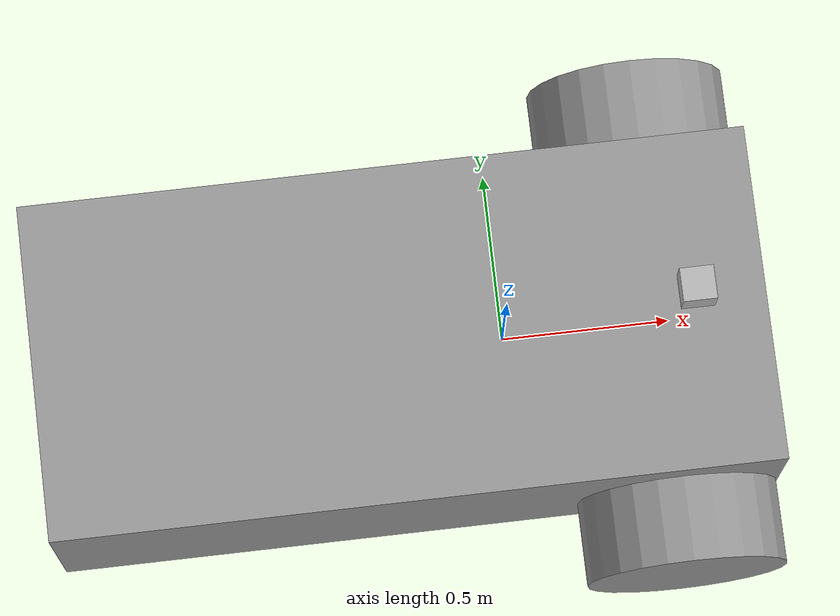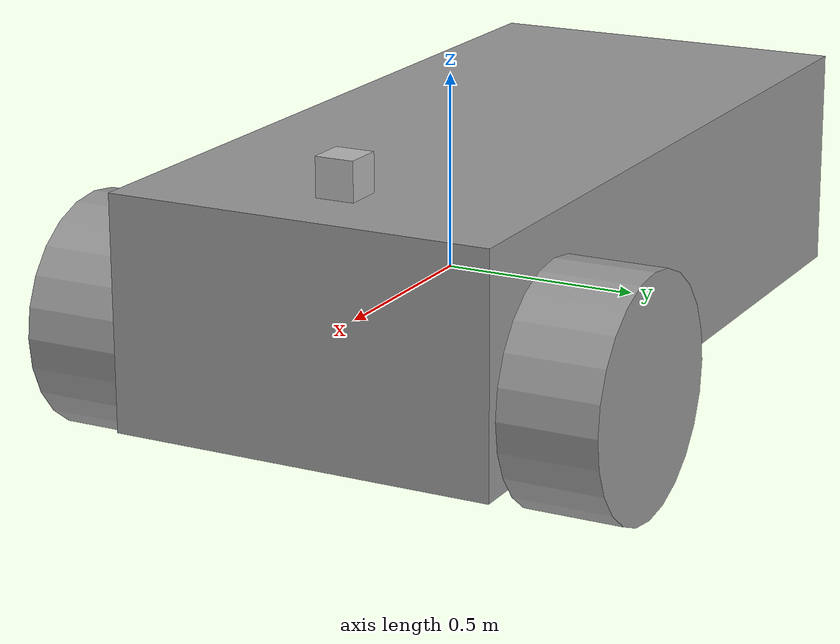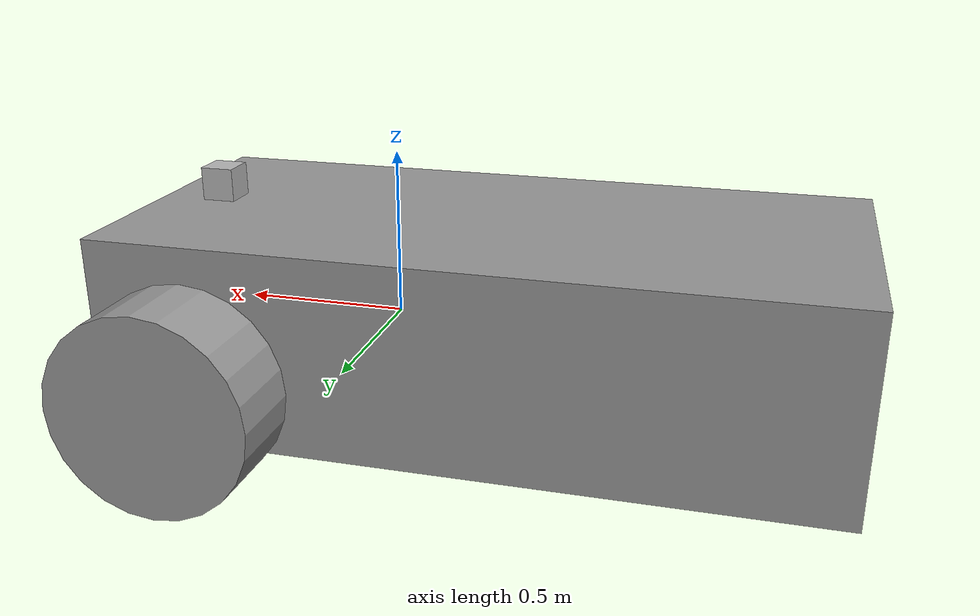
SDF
<?xml version='1.0'?>
<sdf version='1.7'>
  <model name='test_vehicle'>
    <link name='link_0'>
      <inertial>
        <mass>1.18175</mass>
        <inertia>
          <ixx>0.128159</ixx>
          <ixy>0</ixy>
          <ixz>0</ixz>
          <iyy>0.486034</iyy>
          <iyz>0</iyz>
          <izz>0.554832</izz>
        </inertia>
        <pose>0 0 0 0 -0 0</pose>
      </inertial>
      <pose>-0.309686 -0.007462 0.018043 0 -0 0</pose>
      <gravity>1</gravity>
      <self_collide>0</self_collide>
      <kinematic>0</kinematic>
      <enable_wind>0</enable_wind>
      <visual name='visual'>
        <pose>0 0 0 0 -0 0</pose>
        <geometry>
          <box>
            <size>2.15268 1 0.6</size>
          </box>
        </geometry>
        <material>
          <lighting>1</lighting>
          <script>
            <uri>file://media/materials/scripts/gazebo.material</uri>
            <name>Gazebo/Grey</name>
          </script>
          <shader type='pixel'>
            <normal_map>__default__</normal_map>
          </shader>
          <ambient>0.3 0.3 0.3 1</ambient>
          <diffuse>0.7 0.7 0.7 1</diffuse>
          <specular>0.01 0.01 0.01 1</specular>
          <emissive>0 0 0 1</emissive>
        </material>
        <transparency>0</transparency>
        <cast_shadows>1</cast_shadows>
      </visual>
      <collision name='collision'>
        <laser_retro>0</laser_retro>
        <max_contacts>10</max_contacts>
        <pose>0 0 0 0 -0 0</pose>
        <geometry>
          <box>
            <size>2.15268 1 0.6</size>
          </box>
        </geometry>
        <surface>
          <friction>
            <ode>
              <mu>1</mu>
              <mu2>1</mu2>
              <fdir1>0 0 0</fdir1>
              <slip1>0</slip1>
              <slip2>0</slip2>
            </ode>
            <torsional>
              <coefficient>1</coefficient>
              <patch_radius>0</patch_radius>
              <surface_radius>0</surface_radius>
              <use_patch_radius>1</use_patch_radius>
              <ode>
                <slip>0</slip>
              </ode>
            </torsional>
          </friction>
          <bounce>
            <restitution_coefficient>0</restitution_coefficient>
            <threshold>1e+06</threshold>
          </bounce>
          <contact>
            <collide_without_contact>0</collide_without_contact>
            <collide_without_contact_bitmask>1</collide_without_contact_bitmask>
            <collide_bitmask>1</collide_bitmask>
            <ode>
              <soft_cfm>0</soft_cfm>
              <soft_erp>0.2</soft_erp>
              <kp>1e+13</kp>
              <kd>1</kd>
              <max_vel>0.01</max_vel>
              <min_depth>0</min_depth>
            </ode>
            <bullet>
              <split_impulse>1</split_impulse>
              <split_impulse_penetration_threshold>-0.01</split_impulse_penetration_threshold>
              <soft_cfm>0</soft_cfm>
              <soft_erp>0.2</soft_erp>
              <kp>1e+13</kp>
              <kd>1</kd>
            </bullet>
          </contact>
        </surface>
      </collision>
    </link>
    <link name='link_1'>
      <inertial>
        <mass>1</mass>
        <inertia>
          <ixx>0.145833</ixx>
          <ixy>0</ixy>
          <ixz>0</ixz>
          <iyy>0.145833</iyy>
          <iyz>0</iyz>
          <izz>0.125</izz>
        </inertia>
        <pose>0 0 0 0 -0 0</pose>
      </inertial>
      <pose>0.466652 0.632567 -0.081957 1.5707 -0 0</pose>
      <gravity>1</gravity>
      <self_collide>0</self_collide>
      <kinematic>0</kinematic>
      <enable_wind>0</enable_wind>
      <visual name='visual'>
        <pose>0 0 0 0 -0 0</pose>
        <geometry>
          <cylinder>
            <radius>0.3</radius>
            <length>0.25</length>
          </cylinder>
        </geometry>
        <material>
          <lighting>1</lighting>
          <script>
            <uri>file://media/materials/scripts/gazebo.material</uri>
            <name>Gazebo/Grey</name>
          </script>
          <shader type='pixel'>
            <normal_map>__default__</normal_map>
          </shader>
          <ambient>0.3 0.3 0.3 1</ambient>
          <diffuse>0.7 0.7 0.7 1</diffuse>
          <specular>0.01 0.01 0.01 1</specular>
          <emissive>0 0 0 1</emissive>
        </material>
        <transparency>0</transparency>
        <cast_shadows>1</cast_shadows>
      </visual>
      <collision name='collision'>
        <laser_retro>0</laser_retro>
        <max_contacts>10</max_contacts>
        <pose>0 0 0 0 -0 0</pose>
        <geometry>
          <cylinder>
            <radius>0.3</radius>
            <length>0.25</length>
          </cylinder>
        </geometry>
        <surface>
          <friction>
            <ode>
              <mu>1</mu>
              <mu2>1</mu2>
              <fdir1>0 0 0</fdir1>
              <slip1>0</slip1>
              <slip2>0</slip2>
            </ode>
            <torsional>
              <coefficient>1</coefficient>
              <patch_radius>0</patch_radius>
              <surface_radius>0</surface_radius>
              <use_patch_radius>1</use_patch_radius>
              <ode>
                <slip>0</slip>
              </ode>
            </torsional>
          </friction>
          <bounce>
            <restitution_coefficient>0</restitution_coefficient>
            <threshold>1e+06</threshold>
          </bounce>
          <contact>
            <collide_without_contact>0</collide_without_contact>
            <collide_without_contact_bitmask>1</collide_without_contact_bitmask>
            <collide_bitmask>1</collide_bitmask>
            <ode>
              <soft_cfm>0</soft_cfm>
              <soft_erp>0.2</soft_erp>
              <kp>1e+13</kp>
              <kd>1</kd>
              <max_vel>0.01</max_vel>
              <min_depth>0</min_depth>
            </ode>
            <bullet>
              <split_impulse>1</split_impulse>
              <split_impulse_penetration_threshold>-0.01</split_impulse_penetration_threshold>
              <soft_cfm>0</soft_cfm>
              <soft_erp>0.2</soft_erp>
              <kp>1e+13</kp>
              <kd>1</kd>
            </bullet>
          </contact>
        </surface>
      </collision>
    </link>
    <link name='link_1_clone'>
      <inertial>
        <mass>1</mass>
        <inertia>
          <ixx>0.145833</ixx>
          <ixy>0</ixy>
          <ixz>0</ixz>
          <iyy>0.145833</iyy>
          <iyz>0</iyz>
          <izz>0.125</izz>
        </inertia>
        <pose>0 0 0 0 -0 0</pose>
      </inertial>
      <pose>0.466653 -0.632492 -0.081957 1.5707 -0 0</pose>
      <gravity>1</gravity>
      <self_collide>0</self_collide>
      <kinematic>0</kinematic>
      <enable_wind>0</enable_wind>
      <visual name='visual'>
        <pose>0 0 0 0 -0 0</pose>
        <geometry>
          <cylinder>
            <radius>0.3</radius>
            <length>0.25</length>
          </cylinder>
        </geometry>
        <material>
          <lighting>1</lighting>
          <script>
            <uri>file://media/materials/scripts/gazebo.material</uri>
            <name>Gazebo/Grey</name>
          </script>
          <shader type='pixel'>
            <normal_map>__default__</normal_map>
          </shader>
          <ambient>0.3 0.3 0.3 1</ambient>
          <diffuse>0.7 0.7 0.7 1</diffuse>
          <specular>0.01 0.01 0.01 1</specular>
          <emissive>0 0 0 1</emissive>
        </material>
        <transparency>0</transparency>
        <cast_shadows>1</cast_shadows>
      </visual>
      <collision name='collision'>
        <laser_retro>0</laser_retro>
        <max_contacts>10</max_contacts>
        <pose>0 0 0 0 -0 0</pose>
        <geometry>
          <cylinder>
            <radius>0.3</radius>
            <length>0.25</length>
          </cylinder>
        </geometry>
        <surface>
          <friction>
            <ode>
              <mu>1</mu>
              <mu2>1</mu2>
              <fdir1>0 0 0</fdir1>
              <slip1>0</slip1>
              <slip2>0</slip2>
            </ode>
            <torsional>
              <coefficient>1</coefficient>
              <patch_radius>0</patch_radius>
              <surface_radius>0</surface_radius>
              <use_patch_radius>1</use_patch_radius>
              <ode>
                <slip>0</slip>
              </ode>
            </torsional>
          </friction>
          <bounce>
            <restitution_coefficient>0</restitution_coefficient>
            <threshold>1e+06</threshold>
          </bounce>
          <contact>
            <collide_without_contact>0</collide_without_contact>
            <collide_without_contact_bitmask>1</collide_without_contact_bitmask>
            <collide_bitmask>1</collide_bitmask>
            <ode>
              <soft_cfm>0</soft_cfm>
              <soft_erp>0.2</soft_erp>
              <kp>1e+13</kp>
              <kd>1</kd>
              <max_vel>0.01</max_vel>
              <min_depth>0</min_depth>
            </ode>
            <bullet>
              <split_impulse>1</split_impulse>
              <split_impulse_penetration_threshold>-0.01</split_impulse_penetration_threshold>
              <soft_cfm>0</soft_cfm>
              <soft_erp>0.2</soft_erp>
              <kp>1e+13</kp>
              <kd>1</kd>
            </bullet>
          </contact>
        </surface>
      </collision>
    </link>
    <link name='link_2'>
      <inertial>
        <mass>1</mass>
        <inertia>
          <ixx>0.1</ixx>
          <ixy>0</ixy>
          <ixz>0</ixz>
          <iyy>0.1</iyy>
          <iyz>0</iyz>
          <izz>0.1</izz>
        </inertia>
        <pose>0 0 0 0 -0 0</pose>
      </inertial>
      <pose>-1.18603 -0.007462 -0.181957 0 -0 0</pose>
      <gravity>1</gravity>
      <self_collide>0</self_collide>
      <kinematic>0</kinematic>
      <enable_wind>0</enable_wind>
      <visual name='visual'>
        <pose>0 0 0 0 -0 0</pose>
        <geometry>
          <sphere>
            <radius>0.2</radius>
          </sphere>
        </geometry>
        <material>
          <lighting>1</lighting>
          <script>
            <uri>file://media/materials/scripts/gazebo.material</uri>
            <name>Gazebo/Grey</name>
          </script>
          <shader type='pixel'>
            <normal_map>__default__</normal_map>
          </shader>
          <ambient>0.3 0.3 0.3 1</ambient>
          <diffuse>0.7 0.7 0.7 1</diffuse>
          <specular>0.01 0.01 0.01 1</specular>
          <emissive>0 0 0 1</emissive>
        </material>
        <transparency>0</transparency>
        <cast_shadows>1</cast_shadows>
      </visual>
      <collision name='collision'>
        <laser_retro>0</laser_retro>
        <max_contacts>10</max_contacts>
        <pose>0 0 0 0 -0 0</pose>
        <geometry>
          <sphere>
            <radius>0.2</radius>
          </sphere>
        </geometry>
        <surface>
          <friction>
            <ode>
              <mu>1</mu>
              <mu2>1</mu2>
              <fdir1>0 0 0</fdir1>
              <slip1>0</slip1>
              <slip2>0</slip2>
            </ode>
            <torsional>
              <coefficient>1</coefficient>
              <patch_radius>0</patch_radius>
              <surface_radius>0</surface_radius>
              <use_patch_radius>1</use_patch_radius>
              <ode>
                <slip>0</slip>
              </ode>
            </torsional>
          </friction>
          <bounce>
            <restitution_coefficient>0</restitution_coefficient>
            <threshold>1e+06</threshold>
          </bounce>
          <contact>
            <collide_without_contact>0</collide_without_contact>
            <collide_without_contact_bitmask>1</collide_without_contact_bitmask>
            <collide_bitmask>1</collide_bitmask>
            <ode>
              <soft_cfm>0</soft_cfm>
              <soft_erp>0.2</soft_erp>
              <kp>1e+13</kp>
              <kd>1</kd>
              <max_vel>0.01</max_vel>
              <min_depth>0</min_depth>
            </ode>
            <bullet>
              <split_impulse>1</split_impulse>
              <split_impulse_penetration_threshold>-0.01</split_impulse_penetration_threshold>
              <soft_cfm>0</soft_cfm>
              <soft_erp>0.2</soft_erp>
              <kp>1e+13</kp>
              <kd>1</kd>
            </bullet>
          </contact>
        </surface>
      </collision>
    </link>
    <model name='depth_camera'>
      <link name='link'>
        <pose>0 0 0.05 0 -0 0</pose>
        <inertial>
          <mass>0.1</mass>
          <inertia>
            <ixx>0.000166667</ixx>
            <iyy>0.000166667</iyy>
            <izz>0.000166667</izz>
            <ixy>0</ixy>
            <ixz>0</ixz>
            <iyz>0</iyz>
          </inertia>
        </inertial>
        <collision name='collision'>
          <geometry>
            <box>
              <size>0.1 0.1 0.1</size>
            </box>
          </geometry>
        </collision>
        <visual name='visual'>
          <geometry>
            <box>
              <size>0.1 0.1 0.1</size>
            </box>
          </geometry>
        </visual>
        <sensor name='camera' type='depth'>
          <camera>
            <horizontal_fov>1.047</horizontal_fov>
            <image>
              <width>320</width>
              <height>240</height>
            </image>
            <clip>
              <near>0.1</near>
              <far>100</far>
            </clip>
          </camera>
          <always_on>1</always_on>
          <update_rate>30</update_rate>
          <visualize>1</visualize>
        </sensor>
      </link>
      <pose>0.562412 0.014848 0.327827 0 -0 0</pose>
    </model>
    <joint name='link_0_JOINT_0' type='revolute'>
      <parent>link_0</parent>
      <child>link_1</child>
      <pose>0 0 0 0 -0 0</pose>
      <axis>
        <xyz>0 0 1</xyz>
        <limit>
          <lower>-1.79769e+308</lower>
          <upper>1.79769e+308</upper>
          <effort>-1</effort>
          <velocity>-1</velocity>
        </limit>
        <dynamics>
          <spring_reference>0</spring_reference>
          <spring_stiffness>0</spring_stiffness>
          <damping>0</damping>
        </dynamics>
      </axis>
      <physics>
        <ode>
          <limit>
            <cfm>0</cfm>
            <erp>0.2</erp>
          </limit>
          <suspension>
            <cfm>0</cfm>
            <erp>0.2</erp>
          </suspension>
        </ode>
      </physics>
    </joint>
    <joint name='link_0_JOINT_1' type='revolute'>
      <parent>link_0</parent>
      <child>link_1_clone</child>
      <pose>0 0 0 0 -0 0</pose>
      <axis>
        <xyz>0 0 1</xyz>
        <limit>
          <lower>-1.79769e+308</lower>
          <upper>1.79769e+308</upper>
          <effort>-1</effort>
          <velocity>-1</velocity>
        </limit>
        <dynamics>
          <spring_reference>0</spring_reference>
          <spring_stiffness>0</spring_stiffness>
          <damping>0</damping>
        </dynamics>
      </axis>
      <physics>
        <ode>
          <limit>
            <cfm>0</cfm>
            <erp>0.2</erp>
          </limit>
          <suspension>
            <cfm>0</cfm>
            <erp>0.2</erp>
          </suspension>
        </ode>
      </physics>
    </joint>
    <joint name='link_0_JOINT_2' type='ball'>
      <parent>link_0</parent>
      <child>link_2</child>
      <pose>0 0 0 0 -0 0</pose>
      <physics>
        <ode>
          <limit>
            <cfm>0</cfm>
            <erp>0.2</erp>
          </limit>
          <suspension>
            <cfm>0</cfm>
            <erp>0.2</erp>
          </suspension>
        </ode>
      </physics>
    </joint>
    <joint name='link_0_JOINT_3' type='fixed'>
      <parent>link_0</parent>
      <child>depth_camera::link</child>
      <pose>0 0 0 0 -0 0</pose>
      <physics>
        <ode>
          <limit>
            <cfm>0</cfm>
            <erp>0.2</erp>
          </limit>
          <suspension>
            <cfm>0</cfm>
            <erp>0.2</erp>
          </suspension>
        </ode>
      </physics>
    </joint>
    <static>0</static>
    <allow_auto_disable>1</allow_auto_disable>
    <plugin name='follower' filename='libFollowerPlugin.so'/>
  </model>
</sdf>
